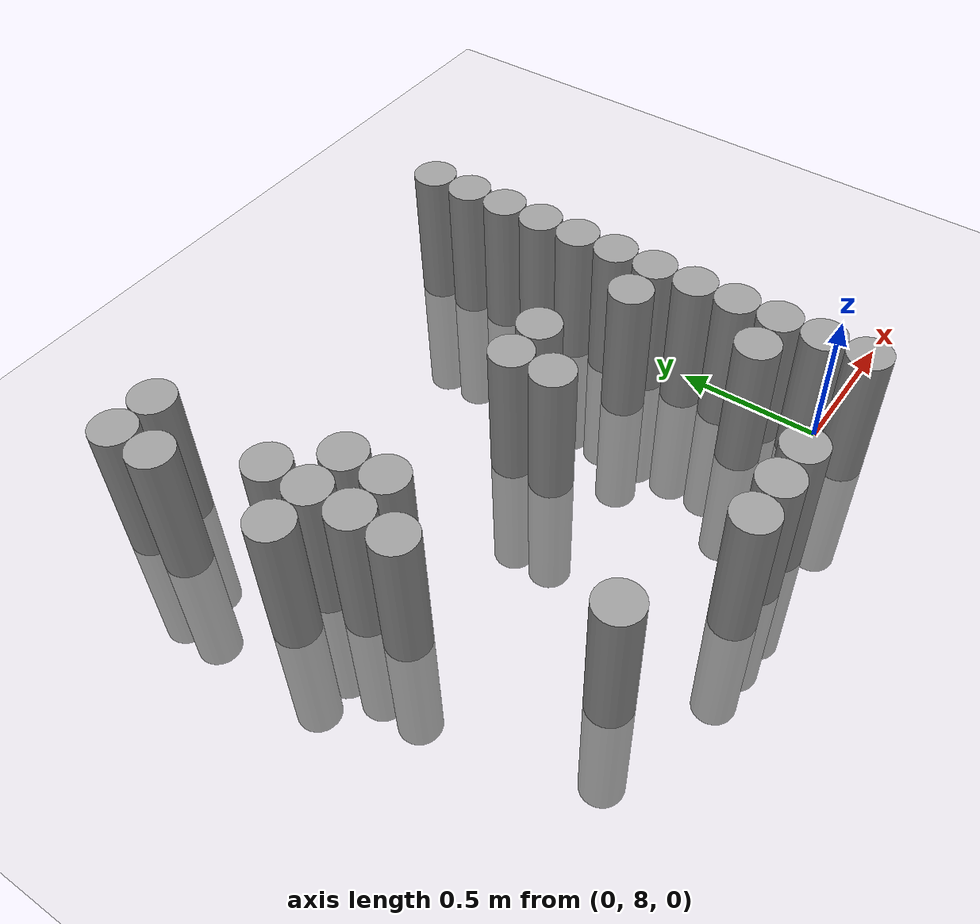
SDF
<sdf version="1.6">
 <world name="default">
  <model name="ground_plane">
   <static>1</static>
   <static>1</static>
   <link name="link">
    <collision name="collision">
     <geometry><plane><normal>0 0 1</normal><size>100 100</size></plane></geometry>
     <surface><friction><ode><mu>100</mu><mu2>50</mu2></ode></friction></surface>
    </collision>
    <visual name="visual">
     <cast_shadows>0</cast_shadows>
     <geometry><plane><normal>0 0 1</normal><size>100 100</size></plane></geometry>
     <material>
      <script><uri>file://media/materials/scripts/gazebo.material</uri><name>Gazebo/Grey</name></script>
     </material>
    </visual>
   </link>
  </model>
  <model name="unit_cylinder_168">
   <static>1</static>
   <pose>-1.575000 8.925000 0.000000 0.000000 0.000000 0.000000</pose>
   <link name="link">
    <inertial>
     <mass>1</mass>
     <inertia><ixx>0.145833</ixx><ixy>0</ixy><ixz>0</ixz><iyy>0.145833</iyy><iyz>0</iyz><izz>0.125</izz></inertia>
    </inertial>
    <collision name="collision">
     <geometry><cylinder><radius>0.075000</radius><length>1</length></cylinder></geometry>
    </collision>
    <visual name="visual">
     <geometry><cylinder><radius>0.075000</radius><length>1</length></cylinder></geometry>
     <material>
      <script><name>Gazebo/Grey</name><uri>file://media/materials/scripts/gazebo.material</uri></script>
     </material>
    </visual>
   </link>
  </model>
  <model name="unit_cylinder_169">
   <static>1</static>
   <pose>-1.575000 9.375000 0.000000 0.000000 0.000000 0.000000</pose>
   <link name="link">
    <inertial>
     <mass>1</mass>
     <inertia><ixx>0.145833</ixx><ixy>0</ixy><ixz>0</ixz><iyy>0.145833</iyy><iyz>0</iyz><izz>0.125</izz></inertia>
    </inertial>
    <collision name="collision">
     <geometry><cylinder><radius>0.075000</radius><length>1</length></cylinder></geometry>
    </collision>
    <visual name="visual">
     <geometry><cylinder><radius>0.075000</radius><length>1</length></cylinder></geometry>
     <material>
      <script><name>Gazebo/Grey</name><uri>file://media/materials/scripts/gazebo.material</uri></script>
     </material>
    </visual>
   </link>
  </model>
  <model name="unit_cylinder_170">
   <static>1</static>
   <pose>-1.575000 9.525000 0.000000 0.000000 0.000000 0.000000</pose>
   <link name="link">
    <inertial>
     <mass>1</mass>
     <inertia><ixx>0.145833</ixx><ixy>0</ixy><ixz>0</ixz><iyy>0.145833</iyy><iyz>0</iyz><izz>0.125</izz></inertia>
    </inertial>
    <collision name="collision">
     <geometry><cylinder><radius>0.075000</radius><length>1</length></cylinder></geometry>
    </collision>
    <visual name="visual">
     <geometry><cylinder><radius>0.075000</radius><length>1</length></cylinder></geometry>
     <material>
      <script><name>Gazebo/Grey</name><uri>file://media/materials/scripts/gazebo.material</uri></script>
     </material>
    </visual>
   </link>
  </model>
  <model name="unit_cylinder_174">
   <static>1</static>
   <pose>-1.425000 8.625000 0.000000 0.000000 0.000000 0.000000</pose>
   <link name="link">
    <inertial>
     <mass>1</mass>
     <inertia><ixx>0.145833</ixx><ixy>0</ixy><ixz>0</ixz><iyy>0.145833</iyy><iyz>0</iyz><izz>0.125</izz></inertia>
    </inertial>
    <collision name="collision">
     <geometry><cylinder><radius>0.075000</radius><length>1</length></cylinder></geometry>
    </collision>
    <visual name="visual">
     <geometry><cylinder><radius>0.075000</radius><length>1</length></cylinder></geometry>
     <material>
      <script><name>Gazebo/Grey</name><uri>file://media/materials/scripts/gazebo.material</uri></script>
     </material>
    </visual>
   </link>
  </model>
  <model name="unit_cylinder_175">
   <static>1</static>
   <pose>-1.425000 8.775000 0.000000 0.000000 0.000000 0.000000</pose>
   <link name="link">
    <inertial>
     <mass>1</mass>
     <inertia><ixx>0.145833</ixx><ixy>0</ixy><ixz>0</ixz><iyy>0.145833</iyy><iyz>0</iyz><izz>0.125</izz></inertia>
    </inertial>
    <collision name="collision">
     <geometry><cylinder><radius>0.075000</radius><length>1</length></cylinder></geometry>
    </collision>
    <visual name="visual">
     <geometry><cylinder><radius>0.075000</radius><length>1</length></cylinder></geometry>
     <material>
      <script><name>Gazebo/Grey</name><uri>file://media/materials/scripts/gazebo.material</uri></script>
     </material>
    </visual>
   </link>
  </model>
  <model name="unit_cylinder_176">
   <static>1</static>
   <pose>-1.425000 8.925000 0.000000 0.000000 0.000000 0.000000</pose>
   <link name="link">
    <inertial>
     <mass>1</mass>
     <inertia><ixx>0.145833</ixx><ixy>0</ixy><ixz>0</ixz><iyy>0.145833</iyy><iyz>0</iyz><izz>0.125</izz></inertia>
    </inertial>
    <collision name="collision">
     <geometry><cylinder><radius>0.075000</radius><length>1</length></cylinder></geometry>
    </collision>
    <visual name="visual">
     <geometry><cylinder><radius>0.075000</radius><length>1</length></cylinder></geometry>
     <material>
      <script><name>Gazebo/Grey</name><uri>file://media/materials/scripts/gazebo.material</uri></script>
     </material>
    </visual>
   </link>
  </model>
  <model name="unit_cylinder_177">
   <static>1</static>
   <pose>-1.425000 9.075000 0.000000 0.000000 0.000000 0.000000</pose>
   <link name="link">
    <inertial>
     <mass>1</mass>
     <inertia><ixx>0.145833</ixx><ixy>0</ixy><ixz>0</ixz><iyy>0.145833</iyy><iyz>0</iyz><izz>0.125</izz></inertia>
    </inertial>
    <collision name="collision">
     <geometry><cylinder><radius>0.075000</radius><length>1</length></cylinder></geometry>
    </collision>
    <visual name="visual">
     <geometry><cylinder><radius>0.075000</radius><length>1</length></cylinder></geometry>
     <material>
      <script><name>Gazebo/Grey</name><uri>file://media/materials/scripts/gazebo.material</uri></script>
     </material>
    </visual>
   </link>
  </model>
  <model name="unit_cylinder_178">
   <static>1</static>
   <pose>-1.425000 9.525000 0.000000 0.000000 0.000000 0.000000</pose>
   <link name="link">
    <inertial>
     <mass>1</mass>
     <inertia><ixx>0.145833</ixx><ixy>0</ixy><ixz>0</ixz><iyy>0.145833</iyy><iyz>0</iyz><izz>0.125</izz></inertia>
    </inertial>
    <collision name="collision">
     <geometry><cylinder><radius>0.075000</radius><length>1</length></cylinder></geometry>
    </collision>
    <visual name="visual">
     <geometry><cylinder><radius>0.075000</radius><length>1</length></cylinder></geometry>
     <material>
      <script><name>Gazebo/Grey</name><uri>file://media/materials/scripts/gazebo.material</uri></script>
     </material>
    </visual>
   </link>
  </model>
  <model name="unit_cylinder_180">
   <static>1</static>
   <pose>-1.275000 8.025000 0.000000 0.000000 0.000000 0.000000</pose>
   <link name="link">
    <inertial>
     <mass>1</mass>
     <inertia><ixx>0.145833</ixx><ixy>0</ixy><ixz>0</ixz><iyy>0.145833</iyy><iyz>0</iyz><izz>0.125</izz></inertia>
    </inertial>
    <collision name="collision">
     <geometry><cylinder><radius>0.075000</radius><length>1</length></cylinder></geometry>
    </collision>
    <visual name="visual">
     <geometry><cylinder><radius>0.075000</radius><length>1</length></cylinder></geometry>
     <material>
      <script><name>Gazebo/Grey</name><uri>file://media/materials/scripts/gazebo.material</uri></script>
     </material>
    </visual>
   </link>
  </model>
  <model name="unit_cylinder_181">
   <static>1</static>
   <pose>-1.275000 8.775000 0.000000 0.000000 0.000000 0.000000</pose>
   <link name="link">
    <inertial>
     <mass>1</mass>
     <inertia><ixx>0.145833</ixx><ixy>0</ixy><ixz>0</ixz><iyy>0.145833</iyy><iyz>0</iyz><izz>0.125</izz></inertia>
    </inertial>
    <collision name="collision">
     <geometry><cylinder><radius>0.075000</radius><length>1</length></cylinder></geometry>
    </collision>
    <visual name="visual">
     <geometry><cylinder><radius>0.075000</radius><length>1</length></cylinder></geometry>
     <material>
      <script><name>Gazebo/Grey</name><uri>file://media/materials/scripts/gazebo.material</uri></script>
     </material>
    </visual>
   </link>
  </model>
  <model name="unit_cylinder_182">
   <static>1</static>
   <pose>-1.275000 8.925000 0.000000 0.000000 0.000000 0.000000</pose>
   <link name="link">
    <inertial>
     <mass>1</mass>
     <inertia><ixx>0.145833</ixx><ixy>0</ixy><ixz>0</ixz><iyy>0.145833</iyy><iyz>0</iyz><izz>0.125</izz></inertia>
    </inertial>
    <collision name="collision">
     <geometry><cylinder><radius>0.075000</radius><length>1</length></cylinder></geometry>
    </collision>
    <visual name="visual">
     <geometry><cylinder><radius>0.075000</radius><length>1</length></cylinder></geometry>
     <material>
      <script><name>Gazebo/Grey</name><uri>file://media/materials/scripts/gazebo.material</uri></script>
     </material>
    </visual>
   </link>
  </model>
  <model name="unit_cylinder_193">
   <static>1</static>
   <pose>-0.825000 7.875000 0.000000 0.000000 0.000000 0.000000</pose>
   <link name="link">
    <inertial>
     <mass>1</mass>
     <inertia><ixx>0.145833</ixx><ixy>0</ixy><ixz>0</ixz><iyy>0.145833</iyy><iyz>0</iyz><izz>0.125</izz></inertia>
    </inertial>
    <collision name="collision">
     <geometry><cylinder><radius>0.075000</radius><length>1</length></cylinder></geometry>
    </collision>
    <visual name="visual">
     <geometry><cylinder><radius>0.075000</radius><length>1</length></cylinder></geometry>
     <material>
      <script><name>Gazebo/Grey</name><uri>file://media/materials/scripts/gazebo.material</uri></script>
     </material>
    </visual>
   </link>
  </model>
  <model name="unit_cylinder_197">
   <static>1</static>
   <pose>-0.675000 7.875000 0.000000 0.000000 0.000000 0.000000</pose>
   <link name="link">
    <inertial>
     <mass>1</mass>
     <inertia><ixx>0.145833</ixx><ixy>0</ixy><ixz>0</ixz><iyy>0.145833</iyy><iyz>0</iyz><izz>0.125</izz></inertia>
    </inertial>
    <collision name="collision">
     <geometry><cylinder><radius>0.075000</radius><length>1</length></cylinder></geometry>
    </collision>
    <visual name="visual">
     <geometry><cylinder><radius>0.075000</radius><length>1</length></cylinder></geometry>
     <material>
      <script><name>Gazebo/Grey</name><uri>file://media/materials/scripts/gazebo.material</uri></script>
     </material>
    </visual>
   </link>
  </model>
  <model name="unit_cylinder_198">
   <static>1</static>
   <pose>-0.675000 8.625000 0.000000 0.000000 0.000000 0.000000</pose>
   <link name="link">
    <inertial>
     <mass>1</mass>
     <inertia><ixx>0.145833</ixx><ixy>0</ixy><ixz>0</ixz><iyy>0.145833</iyy><iyz>0</iyz><izz>0.125</izz></inertia>
    </inertial>
    <collision name="collision">
     <geometry><cylinder><radius>0.075000</radius><length>1</length></cylinder></geometry>
    </collision>
    <visual name="visual">
     <geometry><cylinder><radius>0.075000</radius><length>1</length></cylinder></geometry>
     <material>
      <script><name>Gazebo/Grey</name><uri>file://media/materials/scripts/gazebo.material</uri></script>
     </material>
    </visual>
   </link>
  </model>
  <model name="unit_cylinder_199">
   <static>1</static>
   <pose>-0.675000 8.775000 0.000000 0.000000 0.000000 0.000000</pose>
   <link name="link">
    <inertial>
     <mass>1</mass>
     <inertia><ixx>0.145833</ixx><ixy>0</ixy><ixz>0</ixz><iyy>0.145833</iyy><iyz>0</iyz><izz>0.125</izz></inertia>
    </inertial>
    <collision name="collision">
     <geometry><cylinder><radius>0.075000</radius><length>1</length></cylinder></geometry>
    </collision>
    <visual name="visual">
     <geometry><cylinder><radius>0.075000</radius><length>1</length></cylinder></geometry>
     <material>
      <script><name>Gazebo/Grey</name><uri>file://media/materials/scripts/gazebo.material</uri></script>
     </material>
    </visual>
   </link>
  </model>
  <model name="unit_cylinder_200">
   <static>1</static>
   <pose>-0.525000 7.875000 0.000000 0.000000 0.000000 0.000000</pose>
   <link name="link">
    <inertial>
     <mass>1</mass>
     <inertia><ixx>0.145833</ixx><ixy>0</ixy><ixz>0</ixz><iyy>0.145833</iyy><iyz>0</iyz><izz>0.125</izz></inertia>
    </inertial>
    <collision name="collision">
     <geometry><cylinder><radius>0.075000</radius><length>1</length></cylinder></geometry>
    </collision>
    <visual name="visual">
     <geometry><cylinder><radius>0.075000</radius><length>1</length></cylinder></geometry>
     <material>
      <script><name>Gazebo/Grey</name><uri>file://media/materials/scripts/gazebo.material</uri></script>
     </material>
    </visual>
   </link>
  </model>
  <model name="unit_cylinder_201">
   <static>1</static>
   <pose>-0.525000 8.775000 0.000000 0.000000 0.000000 0.000000</pose>
   <link name="link">
    <inertial>
     <mass>1</mass>
     <inertia><ixx>0.145833</ixx><ixy>0</ixy><ixz>0</ixz><iyy>0.145833</iyy><iyz>0</iyz><izz>0.125</izz></inertia>
    </inertial>
    <collision name="collision">
     <geometry><cylinder><radius>0.075000</radius><length>1</length></cylinder></geometry>
    </collision>
    <visual name="visual">
     <geometry><cylinder><radius>0.075000</radius><length>1</length></cylinder></geometry>
     <material>
      <script><name>Gazebo/Grey</name><uri>file://media/materials/scripts/gazebo.material</uri></script>
     </material>
    </visual>
   </link>
  </model>
  <model name="unit_cylinder_210">
   <static>1</static>
   <pose>-0.225000 8.175000 0.000000 0.000000 0.000000 0.000000</pose>
   <link name="link">
    <inertial>
     <mass>1</mass>
     <inertia><ixx>0.145833</ixx><ixy>0</ixy><ixz>0</ixz><iyy>0.145833</iyy><iyz>0</iyz><izz>0.125</izz></inertia>
    </inertial>
    <collision name="collision">
     <geometry><cylinder><radius>0.075000</radius><length>1</length></cylinder></geometry>
    </collision>
    <visual name="visual">
     <geometry><cylinder><radius>0.075000</radius><length>1</length></cylinder></geometry>
     <material>
      <script><name>Gazebo/Grey</name><uri>file://media/materials/scripts/gazebo.material</uri></script>
     </material>
    </visual>
   </link>
  </model>
  <model name="unit_cylinder_211">
   <static>1</static>
   <pose>-0.225000 8.625000 0.000000 0.000000 0.000000 0.000000</pose>
   <link name="link">
    <inertial>
     <mass>1</mass>
     <inertia><ixx>0.145833</ixx><ixy>0</ixy><ixz>0</ixz><iyy>0.145833</iyy><iyz>0</iyz><izz>0.125</izz></inertia>
    </inertial>
    <collision name="collision">
     <geometry><cylinder><radius>0.075000</radius><length>1</length></cylinder></geometry>
    </collision>
    <visual name="visual">
     <geometry><cylinder><radius>0.075000</radius><length>1</length></cylinder></geometry>
     <material>
      <script><name>Gazebo/Grey</name><uri>file://media/materials/scripts/gazebo.material</uri></script>
     </material>
    </visual>
   </link>
  </model>
  <model name="unit_cylinder_230">
   <static>1</static>
   <pose>-0.075000 7.875000 0.000000 0.000000 0.000000 0.000000</pose>
   <link name="link">
    <inertial>
     <mass>1</mass>
     <inertia><ixx>0.145833</ixx><ixy>0</ixy><ixz>0</ixz><iyy>0.145833</iyy><iyz>0</iyz><izz>0.125</izz></inertia>
    </inertial>
    <collision name="collision">
     <geometry><cylinder><radius>0.075000</radius><length>1</length></cylinder></geometry>
    </collision>
    <visual name="visual">
     <geometry><cylinder><radius>0.075000</radius><length>1</length></cylinder></geometry>
     <material>
      <script><name>Gazebo/Grey</name><uri>file://media/materials/scripts/gazebo.material</uri></script>
     </material>
    </visual>
   </link>
  </model>
  <model name="unit_cylinder_231">
   <static>1</static>
   <pose>-0.075000 8.025000 0.000000 0.000000 0.000000 0.000000</pose>
   <link name="link">
    <inertial>
     <mass>1</mass>
     <inertia><ixx>0.145833</ixx><ixy>0</ixy><ixz>0</ixz><iyy>0.145833</iyy><iyz>0</iyz><izz>0.125</izz></inertia>
    </inertial>
    <collision name="collision">
     <geometry><cylinder><radius>0.075000</radius><length>1</length></cylinder></geometry>
    </collision>
    <visual name="visual">
     <geometry><cylinder><radius>0.075000</radius><length>1</length></cylinder></geometry>
     <material>
      <script><name>Gazebo/Grey</name><uri>file://media/materials/scripts/gazebo.material</uri></script>
     </material>
    </visual>
   </link>
  </model>
  <model name="unit_cylinder_232">
   <static>1</static>
   <pose>-0.075000 8.175000 0.000000 0.000000 0.000000 0.000000</pose>
   <link name="link">
    <inertial>
     <mass>1</mass>
     <inertia><ixx>0.145833</ixx><ixy>0</ixy><ixz>0</ixz><iyy>0.145833</iyy><iyz>0</iyz><izz>0.125</izz></inertia>
    </inertial>
    <collision name="collision">
     <geometry><cylinder><radius>0.075000</radius><length>1</length></cylinder></geometry>
    </collision>
    <visual name="visual">
     <geometry><cylinder><radius>0.075000</radius><length>1</length></cylinder></geometry>
     <material>
      <script><name>Gazebo/Grey</name><uri>file://media/materials/scripts/gazebo.material</uri></script>
     </material>
    </visual>
   </link>
  </model>
  <model name="unit_cylinder_233">
   <static>1</static>
   <pose>-0.075000 8.325000 0.000000 0.000000 0.000000 0.000000</pose>
   <link name="link">
    <inertial>
     <mass>1</mass>
     <inertia><ixx>0.145833</ixx><ixy>0</ixy><ixz>0</ixz><iyy>0.145833</iyy><iyz>0</iyz><izz>0.125</izz></inertia>
    </inertial>
    <collision name="collision">
     <geometry><cylinder><radius>0.075000</radius><length>1</length></cylinder></geometry>
    </collision>
    <visual name="visual">
     <geometry><cylinder><radius>0.075000</radius><length>1</length></cylinder></geometry>
     <material>
      <script><name>Gazebo/Grey</name><uri>file://media/materials/scripts/gazebo.material</uri></script>
     </material>
    </visual>
   </link>
  </model>
  <model name="unit_cylinder_234">
   <static>1</static>
   <pose>-0.075000 8.475000 0.000000 0.000000 0.000000 0.000000</pose>
   <link name="link">
    <inertial>
     <mass>1</mass>
     <inertia><ixx>0.145833</ixx><ixy>0</ixy><ixz>0</ixz><iyy>0.145833</iyy><iyz>0</iyz><izz>0.125</izz></inertia>
    </inertial>
    <collision name="collision">
     <geometry><cylinder><radius>0.075000</radius><length>1</length></cylinder></geometry>
    </collision>
    <visual name="visual">
     <geometry><cylinder><radius>0.075000</radius><length>1</length></cylinder></geometry>
     <material>
      <script><name>Gazebo/Grey</name><uri>file://media/materials/scripts/gazebo.material</uri></script>
     </material>
    </visual>
   </link>
  </model>
  <model name="unit_cylinder_235">
   <static>1</static>
   <pose>-0.075000 8.625000 0.000000 0.000000 0.000000 0.000000</pose>
   <link name="link">
    <inertial>
     <mass>1</mass>
     <inertia><ixx>0.145833</ixx><ixy>0</ixy><ixz>0</ixz><iyy>0.145833</iyy><iyz>0</iyz><izz>0.125</izz></inertia>
    </inertial>
    <collision name="collision">
     <geometry><cylinder><radius>0.075000</radius><length>1</length></cylinder></geometry>
    </collision>
    <visual name="visual">
     <geometry><cylinder><radius>0.075000</radius><length>1</length></cylinder></geometry>
     <material>
      <script><name>Gazebo/Grey</name><uri>file://media/materials/scripts/gazebo.material</uri></script>
     </material>
    </visual>
   </link>
  </model>
  <model name="unit_cylinder_236">
   <static>1</static>
   <pose>-0.075000 8.775000 0.000000 0.000000 0.000000 0.000000</pose>
   <link name="link">
    <inertial>
     <mass>1</mass>
     <inertia><ixx>0.145833</ixx><ixy>0</ixy><ixz>0</ixz><iyy>0.145833</iyy><iyz>0</iyz><izz>0.125</izz></inertia>
    </inertial>
    <collision name="collision">
     <geometry><cylinder><radius>0.075000</radius><length>1</length></cylinder></geometry>
    </collision>
    <visual name="visual">
     <geometry><cylinder><radius>0.075000</radius><length>1</length></cylinder></geometry>
     <material>
      <script><name>Gazebo/Grey</name><uri>file://media/materials/scripts/gazebo.material</uri></script>
     </material>
    </visual>
   </link>
  </model>
  <model name="unit_cylinder_237">
   <static>1</static>
   <pose>-0.075000 8.925000 0.000000 0.000000 0.000000 0.000000</pose>
   <link name="link">
    <inertial>
     <mass>1</mass>
     <inertia><ixx>0.145833</ixx><ixy>0</ixy><ixz>0</ixz><iyy>0.145833</iyy><iyz>0</iyz><izz>0.125</izz></inertia>
    </inertial>
    <collision name="collision">
     <geometry><cylinder><radius>0.075000</radius><length>1</length></cylinder></geometry>
    </collision>
    <visual name="visual">
     <geometry><cylinder><radius>0.075000</radius><length>1</length></cylinder></geometry>
     <material>
      <script><name>Gazebo/Grey</name><uri>file://media/materials/scripts/gazebo.material</uri></script>
     </material>
    </visual>
   </link>
  </model>
  <model name="unit_cylinder_238">
   <static>1</static>
   <pose>-0.075000 9.075000 0.000000 0.000000 0.000000 0.000000</pose>
   <link name="link">
    <inertial>
     <mass>1</mass>
     <inertia><ixx>0.145833</ixx><ixy>0</ixy><ixz>0</ixz><iyy>0.145833</iyy><iyz>0</iyz><izz>0.125</izz></inertia>
    </inertial>
    <collision name="collision">
     <geometry><cylinder><radius>0.075000</radius><length>1</length></cylinder></geometry>
    </collision>
    <visual name="visual">
     <geometry><cylinder><radius>0.075000</radius><length>1</length></cylinder></geometry>
     <material>
      <script><name>Gazebo/Grey</name><uri>file://media/materials/scripts/gazebo.material</uri></script>
     </material>
    </visual>
   </link>
  </model>
  <model name="unit_cylinder_239">
   <static>1</static>
   <pose>-0.075000 9.225000 0.000000 0.000000 0.000000 0.000000</pose>
   <link name="link">
    <inertial>
     <mass>1</mass>
     <inertia><ixx>0.145833</ixx><ixy>0</ixy><ixz>0</ixz><iyy>0.145833</iyy><iyz>0</iyz><izz>0.125</izz></inertia>
    </inertial>
    <collision name="collision">
     <geometry><cylinder><radius>0.075000</radius><length>1</length></cylinder></geometry>
    </collision>
    <visual name="visual">
     <geometry><cylinder><radius>0.075000</radius><length>1</length></cylinder></geometry>
     <material>
      <script><name>Gazebo/Grey</name><uri>file://media/materials/scripts/gazebo.material</uri></script>
     </material>
    </visual>
   </link>
  </model>
  <model name="unit_cylinder_240">
   <static>1</static>
   <pose>-0.075000 9.375000 0.000000 0.000000 0.000000 0.000000</pose>
   <link name="link">
    <inertial>
     <mass>1</mass>
     <inertia><ixx>0.145833</ixx><ixy>0</ixy><ixz>0</ixz><iyy>0.145833</iyy><iyz>0</iyz><izz>0.125</izz></inertia>
    </inertial>
    <collision name="collision">
     <geometry><cylinder><radius>0.075000</radius><length>1</length></cylinder></geometry>
    </collision>
    <visual name="visual">
     <geometry><cylinder><radius>0.075000</radius><length>1</length></cylinder></geometry>
     <material>
      <script><name>Gazebo/Grey</name><uri>file://media/materials/scripts/gazebo.material</uri></script>
     </material>
    </visual>
   </link>
  </model>
  <model name="unit_cylinder_241">
   <static>1</static>
   <pose>-0.075000 9.525000 0.000000 0.000000 0.000000 0.000000</pose>
   <link name="link">
    <inertial>
     <mass>1</mass>
     <inertia><ixx>0.145833</ixx><ixy>0</ixy><ixz>0</ixz><iyy>0.145833</iyy><iyz>0</iyz><izz>0.125</izz></inertia>
    </inertial>
    <collision name="collision">
     <geometry><cylinder><radius>0.075000</radius><length>1</length></cylinder></geometry>
    </collision>
    <visual name="visual">
     <geometry><cylinder><radius>0.075000</radius><length>1</length></cylinder></geometry>
     <material>
      <script><name>Gazebo/Grey</name><uri>file://media/materials/scripts/gazebo.material</uri></script>
     </material>
    </visual>
   </link>
  </model>
 </world>
</sdf>
